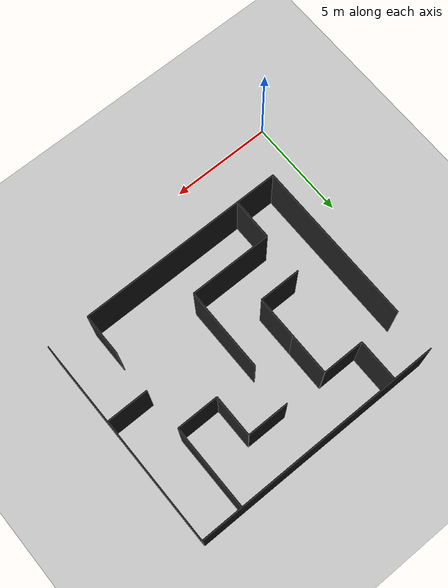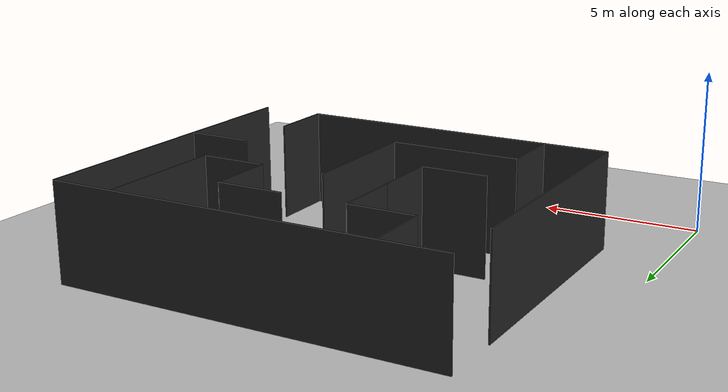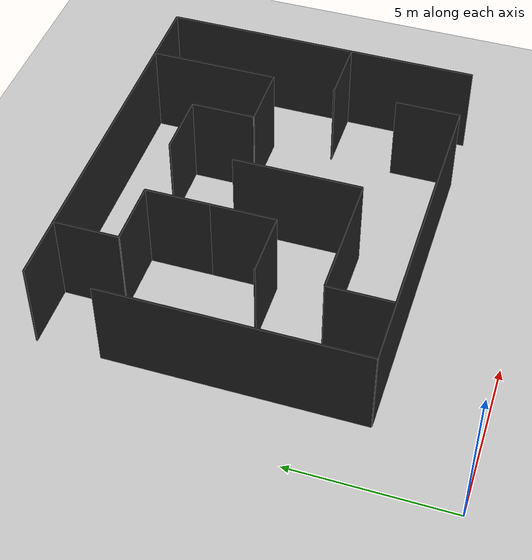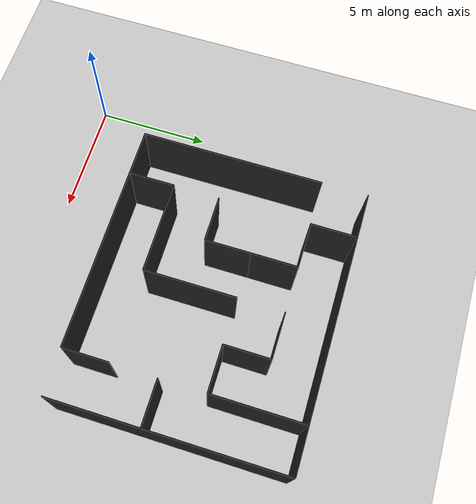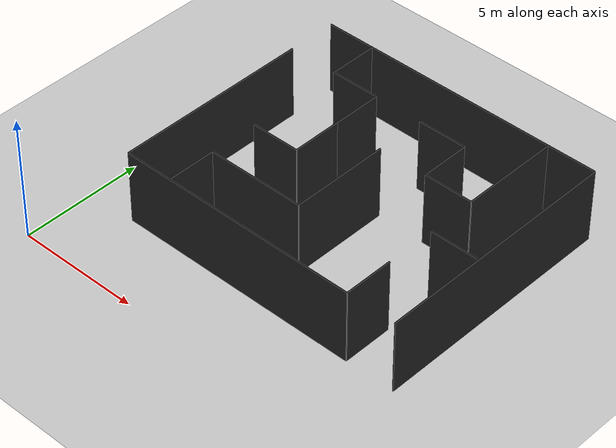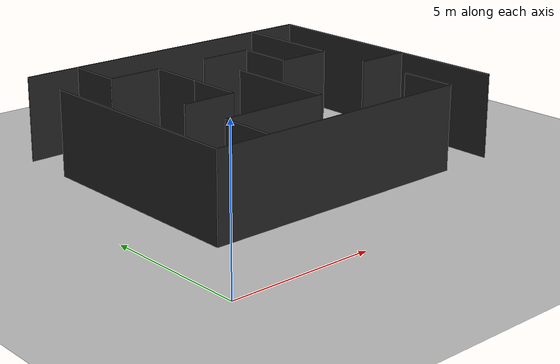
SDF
<sdf version="1.6">
  <world name="default">
    <model name="box_18">
  <pose frame="">9.0 11.0 1.5 0 0 -3.141592653589793</pose>
  <link name="link">
    <inertial>
      <mass>1</mass>
      <inertia>
        <ixx>0</ixx>
        <ixy>0</ixy>
        <ixz>0</ixz>
        <iyy>0</iyy>
        <iyz>0</iyz>
        <izz>0</izz>
      </inertia>
    </inertial>
    <collision name="collision">
      <geometry>
        <box>
          <size>2.0 0.05 3</size>
        </box>
      </geometry>
      <max_contacts>10</max_contacts>
      <surface>
        <contact>
          <ode/>
        </contact>
        <bounce/>
        <friction>
          <torsional>
            <ode/>
          </torsional>
          <ode/>
        </friction>
      </surface>
    </collision>
    <visual name="visual">
      <geometry>
        <box>
          <size>2.0 0.05 3</size>
        </box>
      </geometry>
      <material>
        <script>
          <name>Gazebo/Black</name>
          <uri>file://media/materials/scripts/gazebo.material</uri>
        </script>
      </material>
    </visual>
    <self_collide>0</self_collide>
    <enable_wind>0</enable_wind>
    <kinematic>0</kinematic>
  </link>
	<static>1</static>
</model><model name="box_17">
  <pose frame="">10.0 10.0 1.5 0 0 -1.5707963267948966</pose>
  <link name="link">
    <inertial>
      <mass>1</mass>
      <inertia>
        <ixx>0</ixx>
        <ixy>0</ixy>
        <ixz>0</ixz>
        <iyy>0</iyy>
        <iyz>0</iyz>
        <izz>0</izz>
      </inertia>
    </inertial>
    <collision name="collision">
      <geometry>
        <box>
          <size>2.0 0.05 3</size>
        </box>
      </geometry>
      <max_contacts>10</max_contacts>
      <surface>
        <contact>
          <ode/>
        </contact>
        <bounce/>
        <friction>
          <torsional>
            <ode/>
          </torsional>
          <ode/>
        </friction>
      </surface>
    </collision>
    <visual name="visual">
      <geometry>
        <box>
          <size>2.0 0.05 3</size>
        </box>
      </geometry>
      <material>
        <script>
          <name>Gazebo/Black</name>
          <uri>file://media/materials/scripts/gazebo.material</uri>
        </script>
      </material>
    </visual>
    <self_collide>0</self_collide>
    <enable_wind>0</enable_wind>
    <kinematic>0</kinematic>
  </link>
	<static>1</static>
</model><model name="box_16">
  <pose frame="">11.0 9.0 1.5 0 0 -0.0</pose>
  <link name="link">
    <inertial>
      <mass>1</mass>
      <inertia>
        <ixx>0</ixx>
        <ixy>0</ixy>
        <ixz>0</ixz>
        <iyy>0</iyy>
        <iyz>0</iyz>
        <izz>0</izz>
      </inertia>
    </inertial>
    <collision name="collision">
      <geometry>
        <box>
          <size>2.0 0.05 3</size>
        </box>
      </geometry>
      <max_contacts>10</max_contacts>
      <surface>
        <contact>
          <ode/>
        </contact>
        <bounce/>
        <friction>
          <torsional>
            <ode/>
          </torsional>
          <ode/>
        </friction>
      </surface>
    </collision>
    <visual name="visual">
      <geometry>
        <box>
          <size>2.0 0.05 3</size>
        </box>
      </geometry>
      <material>
        <script>
          <name>Gazebo/Black</name>
          <uri>file://media/materials/scripts/gazebo.material</uri>
        </script>
      </material>
    </visual>
    <self_collide>0</self_collide>
    <enable_wind>0</enable_wind>
    <kinematic>0</kinematic>
  </link>
	<static>1</static>
</model><model name="box_15">
  <pose frame="">12.0 11.0 1.5 0 0 1.5707963267948966</pose>
  <link name="link">
    <inertial>
      <mass>1</mass>
      <inertia>
        <ixx>0</ixx>
        <ixy>0</ixy>
        <ixz>0</ixz>
        <iyy>0</iyy>
        <iyz>0</iyz>
        <izz>0</izz>
      </inertia>
    </inertial>
    <collision name="collision">
      <geometry>
        <box>
          <size>4.0 0.05 3</size>
        </box>
      </geometry>
      <max_contacts>10</max_contacts>
      <surface>
        <contact>
          <ode/>
        </contact>
        <bounce/>
        <friction>
          <torsional>
            <ode/>
          </torsional>
          <ode/>
        </friction>
      </surface>
    </collision>
    <visual name="visual">
      <geometry>
        <box>
          <size>4.0 0.05 3</size>
        </box>
      </geometry>
      <material>
        <script>
          <name>Gazebo/Black</name>
          <uri>file://media/materials/scripts/gazebo.material</uri>
        </script>
      </material>
    </visual>
    <self_collide>0</self_collide>
    <enable_wind>0</enable_wind>
    <kinematic>0</kinematic>
  </link>
	<static>1</static>
</model><model name="box_14">
  <pose frame="">13.0 7.0 1.5 0 0 -3.141592653589793</pose>
  <link name="link">
    <inertial>
      <mass>1</mass>
      <inertia>
        <ixx>0</ixx>
        <ixy>0</ixy>
        <ixz>0</ixz>
        <iyy>0</iyy>
        <iyz>0</iyz>
        <izz>0</izz>
      </inertia>
    </inertial>
    <collision name="collision">
      <geometry>
        <box>
          <size>2.0 0.05 3</size>
        </box>
      </geometry>
      <max_contacts>10</max_contacts>
      <surface>
        <contact>
          <ode/>
        </contact>
        <bounce/>
        <friction>
          <torsional>
            <ode/>
          </torsional>
          <ode/>
        </friction>
      </surface>
    </collision>
    <visual name="visual">
      <geometry>
        <box>
          <size>2.0 0.05 3</size>
        </box>
      </geometry>
      <material>
        <script>
          <name>Gazebo/Black</name>
          <uri>file://media/materials/scripts/gazebo.material</uri>
        </script>
      </material>
    </visual>
    <self_collide>0</self_collide>
    <enable_wind>0</enable_wind>
    <kinematic>0</kinematic>
  </link>
	<static>1</static>
</model><model name="box_13">
  <pose frame="">12.0 4.0 1.5 0 0 1.5707963267948966</pose>
  <link name="link">
    <inertial>
      <mass>1</mass>
      <inertia>
        <ixx>0</ixx>
        <ixy>0</ixy>
        <ixz>0</ixz>
        <iyy>0</iyy>
        <iyz>0</iyz>
        <izz>0</izz>
      </inertia>
    </inertial>
    <collision name="collision">
      <geometry>
        <box>
          <size>2.0 0.05 3</size>
        </box>
      </geometry>
      <max_contacts>10</max_contacts>
      <surface>
        <contact>
          <ode/>
        </contact>
        <bounce/>
        <friction>
          <torsional>
            <ode/>
          </torsional>
          <ode/>
        </friction>
      </surface>
    </collision>
    <visual name="visual">
      <geometry>
        <box>
          <size>2.0 0.05 3</size>
        </box>
      </geometry>
      <material>
        <script>
          <name>Gazebo/Black</name>
          <uri>file://media/materials/scripts/gazebo.material</uri>
        </script>
      </material>
    </visual>
    <self_collide>0</self_collide>
    <enable_wind>0</enable_wind>
    <kinematic>0</kinematic>
  </link>
	<static>1</static>
</model><model name="box_12">
  <pose frame="">8.0 7.0 1.5 0 0 -1.5707963267948966</pose>
  <link name="link">
    <inertial>
      <mass>1</mass>
      <inertia>
        <ixx>0</ixx>
        <ixy>0</ixy>
        <ixz>0</ixz>
        <iyy>0</iyy>
        <iyz>0</iyz>
        <izz>0</izz>
      </inertia>
    </inertial>
    <collision name="collision">
      <geometry>
        <box>
          <size>4.0 0.05 3</size>
        </box>
      </geometry>
      <max_contacts>10</max_contacts>
      <surface>
        <contact>
          <ode/>
        </contact>
        <bounce/>
        <friction>
          <torsional>
            <ode/>
          </torsional>
          <ode/>
        </friction>
      </surface>
    </collision>
    <visual name="visual">
      <geometry>
        <box>
          <size>4.0 0.05 3</size>
        </box>
      </geometry>
      <material>
        <script>
          <name>Gazebo/Black</name>
          <uri>file://media/materials/scripts/gazebo.material</uri>
        </script>
      </material>
    </visual>
    <self_collide>0</self_collide>
    <enable_wind>0</enable_wind>
    <kinematic>0</kinematic>
  </link>
	<static>1</static>
</model><model name="box_11">
  <pose frame="">6.0 5.0 1.5 0 0 -3.141592653589793</pose>
  <link name="link">
    <inertial>
      <mass>1</mass>
      <inertia>
        <ixx>0</ixx>
        <ixy>0</ixy>
        <ixz>0</ixz>
        <iyy>0</iyy>
        <iyz>0</iyz>
        <izz>0</izz>
      </inertia>
    </inertial>
    <collision name="collision">
      <geometry>
        <box>
          <size>4.0 0.05 3</size>
        </box>
      </geometry>
      <max_contacts>10</max_contacts>
      <surface>
        <contact>
          <ode/>
        </contact>
        <bounce/>
        <friction>
          <torsional>
            <ode/>
          </torsional>
          <ode/>
        </friction>
      </surface>
    </collision>
    <visual name="visual">
      <geometry>
        <box>
          <size>4.0 0.05 3</size>
        </box>
      </geometry>
      <material>
        <script>
          <name>Gazebo/Black</name>
          <uri>file://media/materials/scripts/gazebo.material</uri>
        </script>
      </material>
    </visual>
    <self_collide>0</self_collide>
    <enable_wind>0</enable_wind>
    <kinematic>0</kinematic>
  </link>
	<static>1</static>
</model><model name="box_10">
  <pose frame="">4.0 4.0 1.5 0 0 -1.5707963267948966</pose>
  <link name="link">
    <inertial>
      <mass>1</mass>
      <inertia>
        <ixx>0</ixx>
        <ixy>0</ixy>
        <ixz>0</ixz>
        <iyy>0</iyy>
        <iyz>0</iyz>
        <izz>0</izz>
      </inertia>
    </inertial>
    <collision name="collision">
      <geometry>
        <box>
          <size>2.0 0.05 3</size>
        </box>
      </geometry>
      <max_contacts>10</max_contacts>
      <surface>
        <contact>
          <ode/>
        </contact>
        <bounce/>
        <friction>
          <torsional>
            <ode/>
          </torsional>
          <ode/>
        </friction>
      </surface>
    </collision>
    <visual name="visual">
      <geometry>
        <box>
          <size>2.0 0.05 3</size>
        </box>
      </geometry>
      <material>
        <script>
          <name>Gazebo/Black</name>
          <uri>file://media/materials/scripts/gazebo.material</uri>
        </script>
      </material>
    </visual>
    <self_collide>0</self_collide>
    <enable_wind>0</enable_wind>
    <kinematic>0</kinematic>
  </link>
	<static>1</static>
</model><model name="box_9">
  <pose frame="">5.0 7.0 1.5 0 0 -0.0</pose>
  <link name="link">
    <inertial>
      <mass>1</mass>
      <inertia>
        <ixx>0</ixx>
        <ixy>0</ixy>
        <ixz>0</ixz>
        <iyy>0</iyy>
        <iyz>0</iyz>
        <izz>0</izz>
      </inertia>
    </inertial>
    <collision name="collision">
      <geometry>
        <box>
          <size>2.0 0.05 3</size>
        </box>
      </geometry>
      <max_contacts>10</max_contacts>
      <surface>
        <contact>
          <ode/>
        </contact>
        <bounce/>
        <friction>
          <torsional>
            <ode/>
          </torsional>
          <ode/>
        </friction>
      </surface>
    </collision>
    <visual name="visual">
      <geometry>
        <box>
          <size>2.0 0.05 3</size>
        </box>
      </geometry>
      <material>
        <script>
          <name>Gazebo/Black</name>
          <uri>file://media/materials/scripts/gazebo.material</uri>
        </script>
      </material>
    </visual>
    <self_collide>0</self_collide>
    <enable_wind>0</enable_wind>
    <kinematic>0</kinematic>
  </link>
	<static>1</static>
</model><model name="box_8">
  <pose frame="">6.0 8.0 1.5 0 0 1.5707963267948966</pose>
  <link name="link">
    <inertial>
      <mass>1</mass>
      <inertia>
        <ixx>0</ixx>
        <ixy>0</ixy>
        <ixz>0</ixz>
        <iyy>0</iyy>
        <iyz>0</iyz>
        <izz>0</izz>
      </inertia>
    </inertial>
    <collision name="collision">
      <geometry>
        <box>
          <size>2.0 0.05 3</size>
        </box>
      </geometry>
      <max_contacts>10</max_contacts>
      <surface>
        <contact>
          <ode/>
        </contact>
        <bounce/>
        <friction>
          <torsional>
            <ode/>
          </torsional>
          <ode/>
        </friction>
      </surface>
    </collision>
    <visual name="visual">
      <geometry>
        <box>
          <size>2.0 0.05 3</size>
        </box>
      </geometry>
      <material>
        <script>
          <name>Gazebo/Black</name>
          <uri>file://media/materials/scripts/gazebo.material</uri>
        </script>
      </material>
    </visual>
    <self_collide>0</self_collide>
    <enable_wind>0</enable_wind>
    <kinematic>0</kinematic>
  </link>
	<static>1</static>
</model><model name="box_7">
  <pose frame="">6.0 10.0 1.5 0 0 1.5707963267948966</pose>
  <link name="link">
    <inertial>
      <mass>1</mass>
      <inertia>
        <ixx>0</ixx>
        <ixy>0</ixy>
        <ixz>0</ixz>
        <iyy>0</iyy>
        <iyz>0</iyz>
        <izz>0</izz>
      </inertia>
    </inertial>
    <collision name="collision">
      <geometry>
        <box>
          <size>2.0 0.05 3</size>
        </box>
      </geometry>
      <max_contacts>10</max_contacts>
      <surface>
        <contact>
          <ode/>
        </contact>
        <bounce/>
        <friction>
          <torsional>
            <ode/>
          </torsional>
          <ode/>
        </friction>
      </surface>
    </collision>
    <visual name="visual">
      <geometry>
        <box>
          <size>2.0 0.05 3</size>
        </box>
      </geometry>
      <material>
        <script>
          <name>Gazebo/Black</name>
          <uri>file://media/materials/scripts/gazebo.material</uri>
        </script>
      </material>
    </visual>
    <self_collide>0</self_collide>
    <enable_wind>0</enable_wind>
    <kinematic>0</kinematic>
  </link>
	<static>1</static>
</model><model name="box_6">
  <pose frame="">5.0 11.0 1.5 0 0 -3.141592653589793</pose>
  <link name="link">
    <inertial>
      <mass>1</mass>
      <inertia>
        <ixx>0</ixx>
        <ixy>0</ixy>
        <ixz>0</ixz>
        <iyy>0</iyy>
        <iyz>0</iyz>
        <izz>0</izz>
      </inertia>
    </inertial>
    <collision name="collision">
      <geometry>
        <box>
          <size>2.0 0.05 3</size>
        </box>
      </geometry>
      <max_contacts>10</max_contacts>
      <surface>
        <contact>
          <ode/>
        </contact>
        <bounce/>
        <friction>
          <torsional>
            <ode/>
          </torsional>
          <ode/>
        </friction>
      </surface>
    </collision>
    <visual name="visual">
      <geometry>
        <box>
          <size>2.0 0.05 3</size>
        </box>
      </geometry>
      <material>
        <script>
          <name>Gazebo/Black</name>
          <uri>file://media/materials/scripts/gazebo.material</uri>
        </script>
      </material>
    </visual>
    <self_collide>0</self_collide>
    <enable_wind>0</enable_wind>
    <kinematic>0</kinematic>
  </link>
	<static>1</static>
</model><model name="box_5">
  <pose frame="">4.0 12.0 1.5 0 0 1.5707963267948966</pose>
  <link name="link">
    <inertial>
      <mass>1</mass>
      <inertia>
        <ixx>0</ixx>
        <ixy>0</ixy>
        <ixz>0</ixz>
        <iyy>0</iyy>
        <iyz>0</iyz>
        <izz>0</izz>
      </inertia>
    </inertial>
    <collision name="collision">
      <geometry>
        <box>
          <size>2.0 0.05 3</size>
        </box>
      </geometry>
      <max_contacts>10</max_contacts>
      <surface>
        <contact>
          <ode/>
        </contact>
        <bounce/>
        <friction>
          <torsional>
            <ode/>
          </torsional>
          <ode/>
        </friction>
      </surface>
    </collision>
    <visual name="visual">
      <geometry>
        <box>
          <size>2.0 0.05 3</size>
        </box>
      </geometry>
      <material>
        <script>
          <name>Gazebo/Black</name>
          <uri>file://media/materials/scripts/gazebo.material</uri>
        </script>
      </material>
    </visual>
    <self_collide>0</self_collide>
    <enable_wind>0</enable_wind>
    <kinematic>0</kinematic>
  </link>
	<static>1</static>
</model><model name="box_4">
  <pose frame="">2.0 7.0 1.5 0 0 -1.5707963267948966</pose>
  <link name="link">
    <inertial>
      <mass>1</mass>
      <inertia>
        <ixx>0</ixx>
        <ixy>0</ixy>
        <ixz>0</ixz>
        <iyy>0</iyy>
        <iyz>0</iyz>
        <izz>0</izz>
      </inertia>
    </inertial>
    <collision name="collision">
      <geometry>
        <box>
          <size>8.0 0.05 3</size>
        </box>
      </geometry>
      <max_contacts>10</max_contacts>
      <surface>
        <contact>
          <ode/>
        </contact>
        <bounce/>
        <friction>
          <torsional>
            <ode/>
          </torsional>
          <ode/>
        </friction>
      </surface>
    </collision>
    <visual name="visual">
      <geometry>
        <box>
          <size>8.0 0.05 3</size>
        </box>
      </geometry>
      <material>
        <script>
          <name>Gazebo/Black</name>
          <uri>file://media/materials/scripts/gazebo.material</uri>
        </script>
      </material>
    </visual>
    <self_collide>0</self_collide>
    <enable_wind>0</enable_wind>
    <kinematic>0</kinematic>
  </link>
	<static>1</static>
</model><model name="box_3">
  <pose frame="">7.0 3.0 1.5 0 0 -0.0</pose>
  <link name="link">
    <inertial>
      <mass>1</mass>
      <inertia>
        <ixx>0</ixx>
        <ixy>0</ixy>
        <ixz>0</ixz>
        <iyy>0</iyy>
        <iyz>0</iyz>
        <izz>0</izz>
      </inertia>
    </inertial>
    <collision name="collision">
      <geometry>
        <box>
          <size>10.0 0.05 3</size>
        </box>
      </geometry>
      <max_contacts>10</max_contacts>
      <surface>
        <contact>
          <ode/>
        </contact>
        <bounce/>
        <friction>
          <torsional>
            <ode/>
          </torsional>
          <ode/>
        </friction>
      </surface>
    </collision>
    <visual name="visual">
      <geometry>
        <box>
          <size>10.0 0.05 3</size>
        </box>
      </geometry>
      <material>
        <script>
          <name>Gazebo/Black</name>
          <uri>file://media/materials/scripts/gazebo.material</uri>
        </script>
      </material>
    </visual>
    <self_collide>0</self_collide>
    <enable_wind>0</enable_wind>
    <kinematic>0</kinematic>
  </link>
	<static>1</static>
</model><model name="box_2">
  <pose frame="">14.0 8.0 1.5 0 0 1.5707963267948966</pose>
  <link name="link">
    <inertial>
      <mass>1</mass>
      <inertia>
        <ixx>0</ixx>
        <ixy>0</ixy>
        <ixz>0</ixz>
        <iyy>0</iyy>
        <iyz>0</iyz>
        <izz>0</izz>
      </inertia>
    </inertial>
    <collision name="collision">
      <geometry>
        <box>
          <size>10.0 0.05 3</size>
        </box>
      </geometry>
      <max_contacts>10</max_contacts>
      <surface>
        <contact>
          <ode/>
        </contact>
        <bounce/>
        <friction>
          <torsional>
            <ode/>
          </torsional>
          <ode/>
        </friction>
      </surface>
    </collision>
    <visual name="visual">
      <geometry>
        <box>
          <size>10.0 0.05 3</size>
        </box>
      </geometry>
      <material>
        <script>
          <name>Gazebo/Black</name>
          <uri>file://media/materials/scripts/gazebo.material</uri>
        </script>
      </material>
    </visual>
    <self_collide>0</self_collide>
    <enable_wind>0</enable_wind>
    <kinematic>0</kinematic>
  </link>
	<static>1</static>
</model><model name="box_1">
  <pose frame="">8.0 13.0 1.5 0 0 -3.141592653589793</pose>
  <link name="link">
    <inertial>
      <mass>1</mass>
      <inertia>
        <ixx>0</ixx>
        <ixy>0</ixy>
        <ixz>0</ixz>
        <iyy>0</iyy>
        <iyz>0</iyz>
        <izz>0</izz>
      </inertia>
    </inertial>
    <collision name="collision">
      <geometry>
        <box>
          <size>12.0 0.05 3</size>
        </box>
      </geometry>
      <max_contacts>10</max_contacts>
      <surface>
        <contact>
          <ode/>
        </contact>
        <bounce/>
        <friction>
          <torsional>
            <ode/>
          </torsional>
          <ode/>
        </friction>
      </surface>
    </collision>
    <visual name="visual">
      <geometry>
        <box>
          <size>12.0 0.05 3</size>
        </box>
      </geometry>
      <material>
        <script>
          <name>Gazebo/Black</name>
          <uri>file://media/materials/scripts/gazebo.material</uri>
        </script>
      </material>
    </visual>
    <self_collide>0</self_collide>
    <enable_wind>0</enable_wind>
    <kinematic>0</kinematic>
  </link>
	<static>1</static>
</model>
    <light name="user_point_light_0" type="point">
      <pose frame="">0 0 5 0 -0 0</pose>
      <diffuse>0.5 0.5 0.5 1</diffuse>
      <specular>0.1 0.1 0.1 1</specular>
      <attenuation>
        <range>1000</range>
        <constant>0.05</constant>
        <linear>0.01</linear>
        <quadratic>0.001</quadratic>
      </attenuation>
      <cast_shadows>0</cast_shadows>
      <direction>0 0 -1</direction>
    </light>
    <light name="user_point_light_1" type="point">
      <pose frame="">20 0 5 0 -0 0</pose>
      <diffuse>0.5 0.5 0.5 1</diffuse>
      <specular>0.1 0.1 0.1 1</specular>
      <attenuation>
        <range>1000</range>
        <constant>0.05</constant>
        <linear>0.01</linear>
        <quadratic>0.001</quadratic>
      </attenuation>
      <cast_shadows>0</cast_shadows>
      <direction>0 0 -1</direction>
    </light>
    <light name="user_point_light_2" type="point">
      <pose frame="">0 20 5 0 -0 0</pose>
      <diffuse>0.5 0.5 0.5 1</diffuse>
      <specular>0.1 0.1 0.1 1</specular>
      <attenuation>
        <range>1000</range>
        <constant>0.05</constant>
        <linear>0.01</linear>
        <quadratic>0.001</quadratic>
      </attenuation>
      <cast_shadows>0</cast_shadows>
      <direction>0 0 -1</direction>
    </light>
    <light name="user_point_light_3" type="point">
      <pose frame="">20 20 5 0 -0 0</pose>
      <diffuse>0.5 0.5 0.5 1</diffuse>
      <specular>0.1 0.1 0.1 1</specular>
      <attenuation>
        <range>1000</range>
        <constant>0.05</constant>
        <linear>0.01</linear>
        <quadratic>0.001</quadratic>
      </attenuation>
      <cast_shadows>0</cast_shadows>
      <direction>0 0 -1</direction>
    </light>
    <light name="user_point_light_4" type="point">
      <pose frame="">10 10 5 0 -0 0</pose>
      <diffuse>0.5 0.5 0.5 1</diffuse>
      <specular>0.1 0.1 0.1 1</specular>
      <attenuation>
        <range>1000</range>
        <constant>0.05</constant>
        <linear>0.01</linear>
        <quadratic>0.001</quadratic>
      </attenuation>
      <cast_shadows>0</cast_shadows>
      <direction>0 0 -1</direction>
    </light>
    <include>
			<uri>model://ground_plane</uri>
		</include>
    <gravity>0 0 -9.8</gravity>
    <magnetic_field>6e-06 2.3e-05 -4.2e-05</magnetic_field>
    <atmosphere type="adiabatic"/>
    <physics name="default_physics" default="0" type="ode">
      <max_step_size>0.001</max_step_size>
      <real_time_factor>1</real_time_factor>
      <real_time_update_rate>1000</real_time_update_rate>
    </physics>
    <scene>
      <ambient>0.4 0.4 0.4 1</ambient>
      <background>0.7 0.7 0.7 1</background>
      <shadows>1</shadows>
    </scene>
    <audio>
      <device>default</device>
    </audio>
    <wind/>
    <spherical_coordinates>
      <surface_model>EARTH_WGS84</surface_model>
      <latitude_deg>0</latitude_deg>
      <longitude_deg>0</longitude_deg>
      <elevation>0</elevation>
      <heading_deg>0</heading_deg>
    </spherical_coordinates>
  </world>
</sdf>
